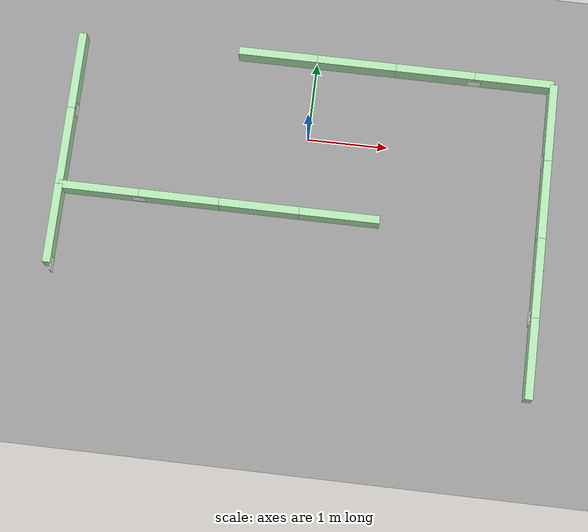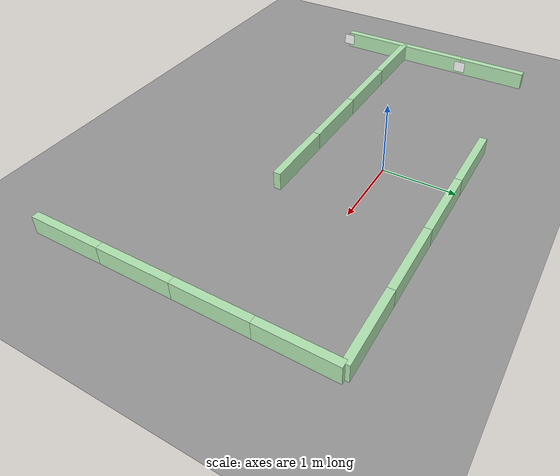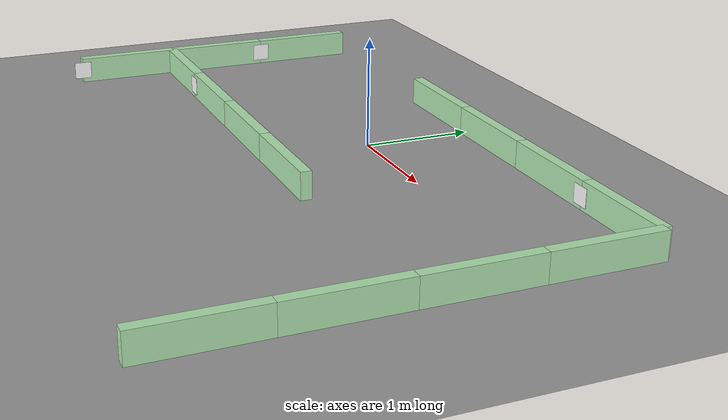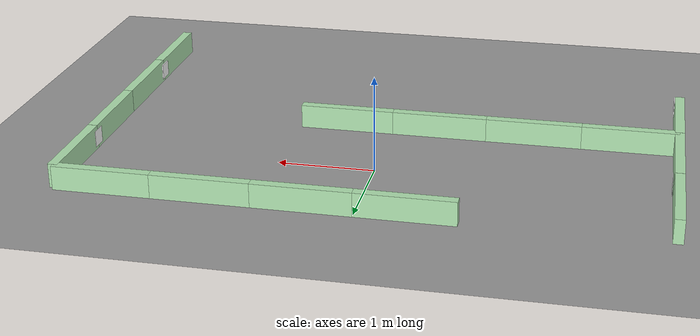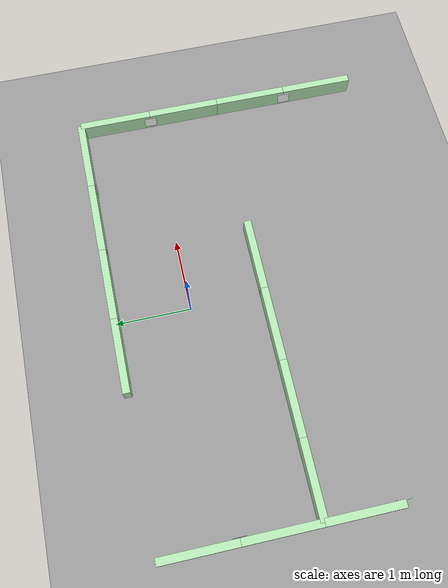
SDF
<sdf version="1.6">
 <world name="default">
  <model name="ground_plane_0">
   <static>1</static>
   <link name="link">
    <collision name="collision">
     <geometry><plane><normal>0 0 1</normal><size>100 100</size></plane></geometry>
     <surface><friction><ode><mu>100</mu><mu2>50</mu2></ode></friction></surface>
    </collision>
    <visual name="visual">
     <cast_shadows>0</cast_shadows>
     <geometry><plane><normal>0 0 1</normal><size>100 100</size></plane></geometry>
     <material>
      <script><uri>file://media/materials/scripts/gazebo.material</uri><name>Gazebo/Grey</name></script>
     </material>
    </visual>
    <velocity_decay><linear>0</linear><angular>0</angular></velocity_decay>
   </link>
   <pose>0.497681 0 0 0 -0 0</pose>
  </model>
  <model name="wall_100_25h_1">
   <link name="link">
    <inertial>
     <mass>1</mass>
     <inertia>
      <ixx>0.166667</ixx>
      <ixy>0</ixy>
      <ixz>0</ixz>
      <iyy>0.166667</iyy>
      <iyz>0</iyz>
      <izz>0.166667</izz>
     </inertia>
    </inertial>
    <visual name="visual">
     <geometry><box><size>1 0.1 0.25</size></box></geometry>
     <material>
      <script><name>Gazebo/Grey</name><uri>file://media/materials/scripts/gazebo.material</uri></script>
      <ambient>0.3 0.5 0.3 1</ambient>
      <diffuse>0.7 0.9 0.7 1</diffuse>
      <specular>0.01 0.02 0.01 1</specular>
      <emissive>0 0 0 1</emissive>
      <lighting>1</lighting>
      <shader type="vertex"><normal_map>__default__</normal_map></shader>
     </material>
    </visual>
    <collision name="collision">
     <geometry><box><size>1 0.1 0.25</size></box></geometry>
     <surface>
      <friction>
       <ode><mu>1</mu><mu2>1</mu2><fdir1>0 0 0</fdir1><slip1>0</slip1><slip2>0</slip2></ode>
       <torsional>
        <coefficient>1</coefficient>
        <patch_radius>0</patch_radius>
        <surface_radius>0</surface_radius>
        <use_patch_radius>1</use_patch_radius>
        <ode><slip>0</slip></ode>
       </torsional>
      </friction>
      <bounce><restitution_coefficient>0</restitution_coefficient><threshold>1e+06</threshold></bounce>
      <contact>
       <collide_without_contact>0</collide_without_contact>
       <collide_without_contact_bitmask>1</collide_without_contact_bitmask>
       <collide_bitmask>1</collide_bitmask>
       <ode>
        <soft_cfm>0</soft_cfm>
        <soft_erp>0.2</soft_erp>
        <kp>1e+13</kp>
        <kd>1</kd>
        <max_vel>0.01</max_vel>
        <min_depth>0</min_depth>
       </ode>
       <bullet>
        <split_impulse>1</split_impulse>
        <split_impulse_penetration_threshold>-0.01</split_impulse_penetration_threshold>
        <soft_cfm>0</soft_cfm>
        <soft_erp>0.2</soft_erp>
        <kp>1e+13</kp>
        <kd>1</kd>
       </bullet>
      </contact>
     </surface>
    </collision>
   </link>
   <static>1</static>
   <pose>-0.5 1 0.125 0.000404 -0 0</pose>
  </model>
  <model name="wall_100_25h_1_clone">
   <link name="link">
    <inertial>
     <mass>1</mass>
     <inertia>
      <ixx>0.166667</ixx>
      <ixy>0</ixy>
      <ixz>0</ixz>
      <iyy>0.166667</iyy>
      <iyz>0</iyz>
      <izz>0.166667</izz>
     </inertia>
    </inertial>
    <visual name="visual">
     <geometry><box><size>1 0.1 0.25</size></box></geometry>
     <material>
      <script><name>Gazebo/Grey</name><uri>file://media/materials/scripts/gazebo.material</uri></script>
      <ambient>0.3 0.5 0.3 1</ambient>
      <diffuse>0.7 0.9 0.7 1</diffuse>
      <specular>0.01 0.02 0.01 1</specular>
      <emissive>0 0 0 1</emissive>
      <lighting>1</lighting>
      <shader type="vertex"><normal_map>__default__</normal_map></shader>
     </material>
    </visual>
    <collision name="collision">
     <geometry><box><size>1 0.1 0.25</size></box></geometry>
     <surface>
      <friction>
       <ode><mu>1</mu><mu2>1</mu2><fdir1>0 0 0</fdir1><slip1>0</slip1><slip2>0</slip2></ode>
       <torsional>
        <coefficient>1</coefficient>
        <patch_radius>0</patch_radius>
        <surface_radius>0</surface_radius>
        <use_patch_radius>1</use_patch_radius>
        <ode><slip>0</slip></ode>
       </torsional>
      </friction>
      <bounce><restitution_coefficient>0</restitution_coefficient><threshold>1e+06</threshold></bounce>
      <contact>
       <collide_without_contact>0</collide_without_contact>
       <collide_without_contact_bitmask>1</collide_without_contact_bitmask>
       <collide_bitmask>1</collide_bitmask>
       <ode>
        <soft_cfm>0</soft_cfm>
        <soft_erp>0.2</soft_erp>
        <kp>1e+13</kp>
        <kd>1</kd>
        <max_vel>0.01</max_vel>
        <min_depth>0</min_depth>
       </ode>
       <bullet>
        <split_impulse>1</split_impulse>
        <split_impulse_penetration_threshold>-0.01</split_impulse_penetration_threshold>
        <soft_cfm>0</soft_cfm>
        <soft_erp>0.2</soft_erp>
        <kp>1e+13</kp>
        <kd>1</kd>
       </bullet>
      </contact>
     </surface>
    </collision>
   </link>
   <static>1</static>
   <pose>0.5 1 0.125 0 -0 0</pose>
  </model>
  <model name="wall_100_25h_1_clone_0">
   <link name="link">
    <inertial>
     <mass>1</mass>
     <inertia>
      <ixx>0.166667</ixx>
      <ixy>0</ixy>
      <ixz>0</ixz>
      <iyy>0.166667</iyy>
      <iyz>0</iyz>
      <izz>0.166667</izz>
     </inertia>
    </inertial>
    <visual name="visual">
     <geometry><box><size>1 0.1 0.25</size></box></geometry>
     <material>
      <script><name>Gazebo/Grey</name><uri>file://media/materials/scripts/gazebo.material</uri></script>
      <ambient>0.3 0.5 0.3 1</ambient>
      <diffuse>0.7 0.9 0.7 1</diffuse>
      <specular>0.01 0.02 0.01 1</specular>
      <emissive>0 0 0 1</emissive>
      <lighting>1</lighting>
      <shader type="vertex"><normal_map>__default__</normal_map></shader>
     </material>
    </visual>
    <collision name="collision">
     <geometry><box><size>1 0.1 0.25</size></box></geometry>
     <surface>
      <friction>
       <ode><mu>1</mu><mu2>1</mu2><fdir1>0 0 0</fdir1><slip1>0</slip1><slip2>0</slip2></ode>
       <torsional>
        <coefficient>1</coefficient>
        <patch_radius>0</patch_radius>
        <surface_radius>0</surface_radius>
        <use_patch_radius>1</use_patch_radius>
        <ode><slip>0</slip></ode>
       </torsional>
      </friction>
      <bounce><restitution_coefficient>0</restitution_coefficient><threshold>1e+06</threshold></bounce>
      <contact>
       <collide_without_contact>0</collide_without_contact>
       <collide_without_contact_bitmask>1</collide_without_contact_bitmask>
       <collide_bitmask>1</collide_bitmask>
       <ode>
        <soft_cfm>0</soft_cfm>
        <soft_erp>0.2</soft_erp>
        <kp>1e+13</kp>
        <kd>1</kd>
        <max_vel>0.01</max_vel>
        <min_depth>0</min_depth>
       </ode>
       <bullet>
        <split_impulse>1</split_impulse>
        <split_impulse_penetration_threshold>-0.01</split_impulse_penetration_threshold>
        <soft_cfm>0</soft_cfm>
        <soft_erp>0.2</soft_erp>
        <kp>1e+13</kp>
        <kd>1</kd>
       </bullet>
      </contact>
     </surface>
    </collision>
   </link>
   <static>1</static>
   <pose>1.5 1 0.125 0.000404 -0 0</pose>
  </model>
  <model name="wall_100_25h_1_clone_1">
   <link name="link">
    <inertial>
     <mass>1</mass>
     <inertia>
      <ixx>0.166667</ixx>
      <ixy>0</ixy>
      <ixz>0</ixz>
      <iyy>0.166667</iyy>
      <iyz>0</iyz>
      <izz>0.166667</izz>
     </inertia>
    </inertial>
    <visual name="visual">
     <geometry><box><size>1 0.1 0.25</size></box></geometry>
     <material>
      <script><name>Gazebo/Grey</name><uri>file://media/materials/scripts/gazebo.material</uri></script>
      <ambient>0.3 0.5 0.3 1</ambient>
      <diffuse>0.7 0.9 0.7 1</diffuse>
      <specular>0.01 0.02 0.01 1</specular>
      <emissive>0 0 0 1</emissive>
      <lighting>1</lighting>
      <shader type="vertex"><normal_map>__default__</normal_map></shader>
     </material>
    </visual>
    <collision name="collision">
     <geometry><box><size>1 0.1 0.25</size></box></geometry>
     <surface>
      <friction>
       <ode><mu>1</mu><mu2>1</mu2><fdir1>0 0 0</fdir1><slip1>0</slip1><slip2>0</slip2></ode>
       <torsional>
        <coefficient>1</coefficient>
        <patch_radius>0</patch_radius>
        <surface_radius>0</surface_radius>
        <use_patch_radius>1</use_patch_radius>
        <ode><slip>0</slip></ode>
       </torsional>
      </friction>
      <bounce><restitution_coefficient>0</restitution_coefficient><threshold>1e+06</threshold></bounce>
      <contact>
       <collide_without_contact>0</collide_without_contact>
       <collide_without_contact_bitmask>1</collide_without_contact_bitmask>
       <collide_bitmask>1</collide_bitmask>
       <ode>
        <soft_cfm>0</soft_cfm>
        <soft_erp>0.2</soft_erp>
        <kp>1e+13</kp>
        <kd>1</kd>
        <max_vel>0.01</max_vel>
        <min_depth>0</min_depth>
       </ode>
       <bullet>
        <split_impulse>1</split_impulse>
        <split_impulse_penetration_threshold>-0.01</split_impulse_penetration_threshold>
        <soft_cfm>0</soft_cfm>
        <soft_erp>0.2</soft_erp>
        <kp>1e+13</kp>
        <kd>1</kd>
       </bullet>
      </contact>
     </surface>
    </collision>
   </link>
   <static>1</static>
   <pose>-0.5 -1 0.125 0.000404 -0 0</pose>
  </model>
  <model name="wall_100_25h_1_clone_2">
   <link name="link">
    <inertial>
     <mass>1</mass>
     <inertia>
      <ixx>0.166667</ixx>
      <ixy>0</ixy>
      <ixz>0</ixz>
      <iyy>0.166667</iyy>
      <iyz>0</iyz>
      <izz>0.166667</izz>
     </inertia>
    </inertial>
    <visual name="visual">
     <geometry><box><size>1 0.1 0.25</size></box></geometry>
     <material>
      <script><name>Gazebo/Grey</name><uri>file://media/materials/scripts/gazebo.material</uri></script>
      <ambient>0.3 0.5 0.3 1</ambient>
      <diffuse>0.7 0.9 0.7 1</diffuse>
      <specular>0.01 0.02 0.01 1</specular>
      <emissive>0 0 0 1</emissive>
      <lighting>1</lighting>
      <shader type="vertex"><normal_map>__default__</normal_map></shader>
     </material>
    </visual>
    <collision name="collision">
     <geometry><box><size>1 0.1 0.25</size></box></geometry>
     <surface>
      <friction>
       <ode><mu>1</mu><mu2>1</mu2><fdir1>0 0 0</fdir1><slip1>0</slip1><slip2>0</slip2></ode>
       <torsional>
        <coefficient>1</coefficient>
        <patch_radius>0</patch_radius>
        <surface_radius>0</surface_radius>
        <use_patch_radius>1</use_patch_radius>
        <ode><slip>0</slip></ode>
       </torsional>
      </friction>
      <bounce><restitution_coefficient>0</restitution_coefficient><threshold>1e+06</threshold></bounce>
      <contact>
       <collide_without_contact>0</collide_without_contact>
       <collide_without_contact_bitmask>1</collide_without_contact_bitmask>
       <collide_bitmask>1</collide_bitmask>
       <ode>
        <soft_cfm>0</soft_cfm>
        <soft_erp>0.2</soft_erp>
        <kp>1e+13</kp>
        <kd>1</kd>
        <max_vel>0.01</max_vel>
        <min_depth>0</min_depth>
       </ode>
       <bullet>
        <split_impulse>1</split_impulse>
        <split_impulse_penetration_threshold>-0.01</split_impulse_penetration_threshold>
        <soft_cfm>0</soft_cfm>
        <soft_erp>0.2</soft_erp>
        <kp>1e+13</kp>
        <kd>1</kd>
       </bullet>
      </contact>
     </surface>
    </collision>
   </link>
   <static>1</static>
   <pose>0.5 -1 0.125 0.000404 -0 0</pose>
  </model>
  <model name="wall_100_25h_1_clone_7">
   <link name="link">
    <inertial>
     <mass>1</mass>
     <inertia>
      <ixx>0.166667</ixx>
      <ixy>0</ixy>
      <ixz>0</ixz>
      <iyy>0.166667</iyy>
      <iyz>0</iyz>
      <izz>0.166667</izz>
     </inertia>
    </inertial>
    <visual name="visual">
     <geometry><box><size>1 0.1 0.25</size></box></geometry>
     <material>
      <script><name>Gazebo/Grey</name><uri>file://media/materials/scripts/gazebo.material</uri></script>
      <ambient>0.3 0.5 0.3 1</ambient>
      <diffuse>0.7 0.9 0.7 1</diffuse>
      <specular>0.01 0.02 0.01 1</specular>
      <emissive>0 0 0 1</emissive>
      <lighting>1</lighting>
      <shader type="vertex"><normal_map>__default__</normal_map></shader>
     </material>
    </visual>
    <collision name="collision">
     <geometry><box><size>1 0.1 0.25</size></box></geometry>
     <surface>
      <friction>
       <ode><mu>1</mu><mu2>1</mu2><fdir1>0 0 0</fdir1><slip1>0</slip1><slip2>0</slip2></ode>
       <torsional>
        <coefficient>1</coefficient>
        <patch_radius>0</patch_radius>
        <surface_radius>0</surface_radius>
        <use_patch_radius>1</use_patch_radius>
        <ode><slip>0</slip></ode>
       </torsional>
      </friction>
      <bounce><restitution_coefficient>0</restitution_coefficient><threshold>1e+06</threshold></bounce>
      <contact>
       <collide_without_contact>0</collide_without_contact>
       <collide_without_contact_bitmask>1</collide_without_contact_bitmask>
       <collide_bitmask>1</collide_bitmask>
       <ode>
        <soft_cfm>0</soft_cfm>
        <soft_erp>0.2</soft_erp>
        <kp>1e+13</kp>
        <kd>1</kd>
        <max_vel>0.01</max_vel>
        <min_depth>0</min_depth>
       </ode>
       <bullet>
        <split_impulse>1</split_impulse>
        <split_impulse_penetration_threshold>-0.01</split_impulse_penetration_threshold>
        <soft_cfm>0</soft_cfm>
        <soft_erp>0.2</soft_erp>
        <kp>1e+13</kp>
        <kd>1</kd>
       </bullet>
      </contact>
     </surface>
    </collision>
   </link>
   <static>1</static>
   <pose>2.5 1 0.125 0.000404 -0 0</pose>
  </model>
  <model name="wall_100_25h_1_clone_8">
   <link name="link">
    <inertial>
     <mass>1</mass>
     <inertia>
      <ixx>0.166667</ixx>
      <ixy>0</ixy>
      <ixz>0</ixz>
      <iyy>0.166667</iyy>
      <iyz>0</iyz>
      <izz>0.166667</izz>
     </inertia>
    </inertial>
    <visual name="visual">
     <geometry><box><size>1 0.1 0.25</size></box></geometry>
     <material>
      <script><name>Gazebo/Grey</name><uri>file://media/materials/scripts/gazebo.material</uri></script>
      <ambient>0.3 0.5 0.3 1</ambient>
      <diffuse>0.7 0.9 0.7 1</diffuse>
      <specular>0.01 0.02 0.01 1</specular>
      <emissive>0 0 0 1</emissive>
      <lighting>1</lighting>
      <shader type="vertex"><normal_map>__default__</normal_map></shader>
     </material>
    </visual>
    <collision name="collision">
     <geometry><box><size>1 0.1 0.25</size></box></geometry>
     <surface>
      <friction>
       <ode><mu>1</mu><mu2>1</mu2><fdir1>0 0 0</fdir1><slip1>0</slip1><slip2>0</slip2></ode>
       <torsional>
        <coefficient>1</coefficient>
        <patch_radius>0</patch_radius>
        <surface_radius>0</surface_radius>
        <use_patch_radius>1</use_patch_radius>
        <ode><slip>0</slip></ode>
       </torsional>
      </friction>
      <bounce><restitution_coefficient>0</restitution_coefficient><threshold>1e+06</threshold></bounce>
      <contact>
       <collide_without_contact>0</collide_without_contact>
       <collide_without_contact_bitmask>1</collide_without_contact_bitmask>
       <collide_bitmask>1</collide_bitmask>
       <ode>
        <soft_cfm>0</soft_cfm>
        <soft_erp>0.2</soft_erp>
        <kp>1e+13</kp>
        <kd>1</kd>
        <max_vel>0.01</max_vel>
        <min_depth>0</min_depth>
       </ode>
       <bullet>
        <split_impulse>1</split_impulse>
        <split_impulse_penetration_threshold>-0.01</split_impulse_penetration_threshold>
        <soft_cfm>0</soft_cfm>
        <soft_erp>0.2</soft_erp>
        <kp>1e+13</kp>
        <kd>1</kd>
       </bullet>
      </contact>
     </surface>
    </collision>
   </link>
   <static>1</static>
   <pose>-1.5 -1 0.125 0.000404 -0 0</pose>
  </model>
  <model name="wall_100_25h_1_clone_9">
   <link name="link">
    <inertial>
     <mass>1</mass>
     <inertia>
      <ixx>0.166667</ixx>
      <ixy>0</ixy>
      <ixz>0</ixz>
      <iyy>0.166667</iyy>
      <iyz>0</iyz>
      <izz>0.166667</izz>
     </inertia>
    </inertial>
    <visual name="visual">
     <geometry><box><size>1 0.1 0.25</size></box></geometry>
     <material>
      <script><name>Gazebo/Grey</name><uri>file://media/materials/scripts/gazebo.material</uri></script>
      <ambient>0.3 0.5 0.3 1</ambient>
      <diffuse>0.7 0.9 0.7 1</diffuse>
      <specular>0.01 0.02 0.01 1</specular>
      <emissive>0 0 0 1</emissive>
      <lighting>1</lighting>
      <shader type="vertex"><normal_map>__default__</normal_map></shader>
     </material>
    </visual>
    <collision name="collision">
     <geometry><box><size>1 0.1 0.25</size></box></geometry>
     <surface>
      <friction>
       <ode><mu>1</mu><mu2>1</mu2><fdir1>0 0 0</fdir1><slip1>0</slip1><slip2>0</slip2></ode>
       <torsional>
        <coefficient>1</coefficient>
        <patch_radius>0</patch_radius>
        <surface_radius>0</surface_radius>
        <use_patch_radius>1</use_patch_radius>
        <ode><slip>0</slip></ode>
       </torsional>
      </friction>
      <bounce><restitution_coefficient>0</restitution_coefficient><threshold>1e+06</threshold></bounce>
      <contact>
       <collide_without_contact>0</collide_without_contact>
       <collide_without_contact_bitmask>1</collide_without_contact_bitmask>
       <collide_bitmask>1</collide_bitmask>
       <ode>
        <soft_cfm>0</soft_cfm>
        <soft_erp>0.2</soft_erp>
        <kp>1e+13</kp>
        <kd>1</kd>
        <max_vel>0.01</max_vel>
        <min_depth>0</min_depth>
       </ode>
       <bullet>
        <split_impulse>1</split_impulse>
        <split_impulse_penetration_threshold>-0.01</split_impulse_penetration_threshold>
        <soft_cfm>0</soft_cfm>
        <soft_erp>0.2</soft_erp>
        <kp>1e+13</kp>
        <kd>1</kd>
       </bullet>
      </contact>
     </surface>
    </collision>
   </link>
   <static>1</static>
   <pose>-2.5 -1 0.125 0.000404 -0 0</pose>
  </model>
  <model name="wall_100_25h_1_clone_9_clone">
   <link name="link">
    <inertial>
     <mass>1</mass>
     <inertia>
      <ixx>0.166667</ixx>
      <ixy>0</ixy>
      <ixz>0</ixz>
      <iyy>0.166667</iyy>
      <iyz>0</iyz>
      <izz>0.166667</izz>
     </inertia>
    </inertial>
    <visual name="visual">
     <geometry><box><size>1 0.1 0.25</size></box></geometry>
     <material>
      <script><name>Gazebo/Grey</name><uri>file://media/materials/scripts/gazebo.material</uri></script>
      <ambient>0.3 0.5 0.3 1</ambient>
      <diffuse>0.7 0.9 0.7 1</diffuse>
      <specular>0.01 0.02 0.01 1</specular>
      <emissive>0 0 0 1</emissive>
      <lighting>1</lighting>
      <shader type="vertex"><normal_map>__default__</normal_map></shader>
     </material>
    </visual>
    <collision name="collision">
     <geometry><box><size>1 0.1 0.25</size></box></geometry>
     <surface>
      <friction>
       <ode><mu>1</mu><mu2>1</mu2><fdir1>0 0 0</fdir1><slip1>0</slip1><slip2>0</slip2></ode>
       <torsional>
        <coefficient>1</coefficient>
        <patch_radius>0</patch_radius>
        <surface_radius>0</surface_radius>
        <use_patch_radius>1</use_patch_radius>
        <ode><slip>0</slip></ode>
       </torsional>
      </friction>
      <bounce><restitution_coefficient>0</restitution_coefficient><threshold>1e+06</threshold></bounce>
      <contact>
       <collide_without_contact>0</collide_without_contact>
       <collide_without_contact_bitmask>1</collide_without_contact_bitmask>
       <collide_bitmask>1</collide_bitmask>
       <ode>
        <soft_cfm>0</soft_cfm>
        <soft_erp>0.2</soft_erp>
        <kp>1e+13</kp>
        <kd>1</kd>
        <max_vel>0.01</max_vel>
        <min_depth>0</min_depth>
       </ode>
       <bullet>
        <split_impulse>1</split_impulse>
        <split_impulse_penetration_threshold>-0.01</split_impulse_penetration_threshold>
        <soft_cfm>0</soft_cfm>
        <soft_erp>0.2</soft_erp>
        <kp>1e+13</kp>
        <kd>1</kd>
       </bullet>
      </contact>
     </surface>
    </collision>
   </link>
   <static>1</static>
   <pose>-3 -1.5 0.125 0 0.000404 -1.57111</pose>
  </model>
  <model name="wall_100_25h_1_clone_9_clone_clone_4">
   <link name="link">
    <inertial>
     <mass>1</mass>
     <inertia>
      <ixx>0.166667</ixx>
      <ixy>0</ixy>
      <ixz>0</ixz>
      <iyy>0.166667</iyy>
      <iyz>0</iyz>
      <izz>0.166667</izz>
     </inertia>
    </inertial>
    <visual name="visual">
     <geometry><box><size>1 0.1 0.25</size></box></geometry>
     <material>
      <script><name>Gazebo/Grey</name><uri>file://media/materials/scripts/gazebo.material</uri></script>
      <ambient>0.3 0.5 0.3 1</ambient>
      <diffuse>0.7 0.9 0.7 1</diffuse>
      <specular>0.01 0.02 0.01 1</specular>
      <emissive>0 0 0 1</emissive>
      <lighting>1</lighting>
      <shader type="vertex"><normal_map>__default__</normal_map></shader>
     </material>
    </visual>
    <collision name="collision">
     <geometry><box><size>1 0.1 0.25</size></box></geometry>
     <surface>
      <friction>
       <ode><mu>1</mu><mu2>1</mu2><fdir1>0 0 0</fdir1><slip1>0</slip1><slip2>0</slip2></ode>
       <torsional>
        <coefficient>1</coefficient>
        <patch_radius>0</patch_radius>
        <surface_radius>0</surface_radius>
        <use_patch_radius>1</use_patch_radius>
        <ode><slip>0</slip></ode>
       </torsional>
      </friction>
      <bounce><restitution_coefficient>0</restitution_coefficient><threshold>1e+06</threshold></bounce>
      <contact>
       <collide_without_contact>0</collide_without_contact>
       <collide_without_contact_bitmask>1</collide_without_contact_bitmask>
       <collide_bitmask>1</collide_bitmask>
       <ode>
        <soft_cfm>0</soft_cfm>
        <soft_erp>0.2</soft_erp>
        <kp>1e+13</kp>
        <kd>1</kd>
        <max_vel>0.01</max_vel>
        <min_depth>0</min_depth>
       </ode>
       <bullet>
        <split_impulse>1</split_impulse>
        <split_impulse_penetration_threshold>-0.01</split_impulse_penetration_threshold>
        <soft_cfm>0</soft_cfm>
        <soft_erp>0.2</soft_erp>
        <kp>1e+13</kp>
        <kd>1</kd>
       </bullet>
      </contact>
     </surface>
    </collision>
   </link>
   <static>1</static>
   <pose>3 -2.5 0.125 0 0.000404 -1.57111</pose>
  </model>
  <model name="wall_100_25h_1_clone_9_clone_clone_5">
   <link name="link">
    <inertial>
     <mass>1</mass>
     <inertia>
      <ixx>0.166667</ixx>
      <ixy>0</ixy>
      <ixz>0</ixz>
      <iyy>0.166667</iyy>
      <iyz>0</iyz>
      <izz>0.166667</izz>
     </inertia>
    </inertial>
    <visual name="visual">
     <geometry><box><size>1 0.1 0.25</size></box></geometry>
     <material>
      <script><name>Gazebo/Grey</name><uri>file://media/materials/scripts/gazebo.material</uri></script>
      <ambient>0.3 0.5 0.3 1</ambient>
      <diffuse>0.7 0.9 0.7 1</diffuse>
      <specular>0.01 0.02 0.01 1</specular>
      <emissive>0 0 0 1</emissive>
      <lighting>1</lighting>
      <shader type="vertex"><normal_map>__default__</normal_map></shader>
     </material>
    </visual>
    <collision name="collision">
     <geometry><box><size>1 0.1 0.25</size></box></geometry>
     <surface>
      <friction>
       <ode><mu>1</mu><mu2>1</mu2><fdir1>0 0 0</fdir1><slip1>0</slip1><slip2>0</slip2></ode>
       <torsional>
        <coefficient>1</coefficient>
        <patch_radius>0</patch_radius>
        <surface_radius>0</surface_radius>
        <use_patch_radius>1</use_patch_radius>
        <ode><slip>0</slip></ode>
       </torsional>
      </friction>
      <bounce><restitution_coefficient>0</restitution_coefficient><threshold>1e+06</threshold></bounce>
      <contact>
       <collide_without_contact>0</collide_without_contact>
       <collide_without_contact_bitmask>1</collide_without_contact_bitmask>
       <collide_bitmask>1</collide_bitmask>
       <ode>
        <soft_cfm>0</soft_cfm>
        <soft_erp>0.2</soft_erp>
        <kp>1e+13</kp>
        <kd>1</kd>
        <max_vel>0.01</max_vel>
        <min_depth>0</min_depth>
       </ode>
       <bullet>
        <split_impulse>1</split_impulse>
        <split_impulse_penetration_threshold>-0.01</split_impulse_penetration_threshold>
        <soft_cfm>0</soft_cfm>
        <soft_erp>0.2</soft_erp>
        <kp>1e+13</kp>
        <kd>1</kd>
       </bullet>
      </contact>
     </surface>
    </collision>
   </link>
   <static>1</static>
   <pose>3 -1.5 0.125 0 0.000404 -1.57111</pose>
  </model>
  <model name="wall_100_25h_1_clone_9_clone_clone_6">
   <link name="link">
    <inertial>
     <mass>1</mass>
     <inertia>
      <ixx>0.166667</ixx>
      <ixy>0</ixy>
      <ixz>0</ixz>
      <iyy>0.166667</iyy>
      <iyz>0</iyz>
      <izz>0.166667</izz>
     </inertia>
    </inertial>
    <visual name="visual">
     <geometry><box><size>1 0.1 0.25</size></box></geometry>
     <material>
      <script><name>Gazebo/Grey</name><uri>file://media/materials/scripts/gazebo.material</uri></script>
      <ambient>0.3 0.5 0.3 1</ambient>
      <diffuse>0.7 0.9 0.7 1</diffuse>
      <specular>0.01 0.02 0.01 1</specular>
      <emissive>0 0 0 1</emissive>
      <lighting>1</lighting>
      <shader type="vertex"><normal_map>__default__</normal_map></shader>
     </material>
    </visual>
    <collision name="collision">
     <geometry><box><size>1 0.1 0.25</size></box></geometry>
     <surface>
      <friction>
       <ode><mu>1</mu><mu2>1</mu2><fdir1>0 0 0</fdir1><slip1>0</slip1><slip2>0</slip2></ode>
       <torsional>
        <coefficient>1</coefficient>
        <patch_radius>0</patch_radius>
        <surface_radius>0</surface_radius>
        <use_patch_radius>1</use_patch_radius>
        <ode><slip>0</slip></ode>
       </torsional>
      </friction>
      <bounce><restitution_coefficient>0</restitution_coefficient><threshold>1e+06</threshold></bounce>
      <contact>
       <collide_without_contact>0</collide_without_contact>
       <collide_without_contact_bitmask>1</collide_without_contact_bitmask>
       <collide_bitmask>1</collide_bitmask>
       <ode>
        <soft_cfm>0</soft_cfm>
        <soft_erp>0.2</soft_erp>
        <kp>1e+13</kp>
        <kd>1</kd>
        <max_vel>0.01</max_vel>
        <min_depth>0</min_depth>
       </ode>
       <bullet>
        <split_impulse>1</split_impulse>
        <split_impulse_penetration_threshold>-0.01</split_impulse_penetration_threshold>
        <soft_cfm>0</soft_cfm>
        <soft_erp>0.2</soft_erp>
        <kp>1e+13</kp>
        <kd>1</kd>
       </bullet>
      </contact>
     </surface>
    </collision>
   </link>
   <static>1</static>
   <pose>3 -0.5 0.125 0 0.000404 -1.57111</pose>
  </model>
  <model name="wall_100_25h_1_clone_9_clone_clone_7">
   <link name="link">
    <inertial>
     <mass>1</mass>
     <inertia>
      <ixx>0.166667</ixx>
      <ixy>0</ixy>
      <ixz>0</ixz>
      <iyy>0.166667</iyy>
      <iyz>0</iyz>
      <izz>0.166667</izz>
     </inertia>
    </inertial>
    <visual name="visual">
     <geometry><box><size>1 0.1 0.25</size></box></geometry>
     <material>
      <script><name>Gazebo/Grey</name><uri>file://media/materials/scripts/gazebo.material</uri></script>
      <ambient>0.3 0.5 0.3 1</ambient>
      <diffuse>0.7 0.9 0.7 1</diffuse>
      <specular>0.01 0.02 0.01 1</specular>
      <emissive>0 0 0 1</emissive>
      <lighting>1</lighting>
      <shader type="vertex"><normal_map>__default__</normal_map></shader>
     </material>
    </visual>
    <collision name="collision">
     <geometry><box><size>1 0.1 0.25</size></box></geometry>
     <surface>
      <friction>
       <ode><mu>1</mu><mu2>1</mu2><fdir1>0 0 0</fdir1><slip1>0</slip1><slip2>0</slip2></ode>
       <torsional>
        <coefficient>1</coefficient>
        <patch_radius>0</patch_radius>
        <surface_radius>0</surface_radius>
        <use_patch_radius>1</use_patch_radius>
        <ode><slip>0</slip></ode>
       </torsional>
      </friction>
      <bounce><restitution_coefficient>0</restitution_coefficient><threshold>1e+06</threshold></bounce>
      <contact>
       <collide_without_contact>0</collide_without_contact>
       <collide_without_contact_bitmask>1</collide_without_contact_bitmask>
       <collide_bitmask>1</collide_bitmask>
       <ode>
        <soft_cfm>0</soft_cfm>
        <soft_erp>0.2</soft_erp>
        <kp>1e+13</kp>
        <kd>1</kd>
        <max_vel>0.01</max_vel>
        <min_depth>0</min_depth>
       </ode>
       <bullet>
        <split_impulse>1</split_impulse>
        <split_impulse_penetration_threshold>-0.01</split_impulse_penetration_threshold>
        <soft_cfm>0</soft_cfm>
        <soft_erp>0.2</soft_erp>
        <kp>1e+13</kp>
        <kd>1</kd>
       </bullet>
      </contact>
     </surface>
    </collision>
   </link>
   <static>1</static>
   <pose>3 0.5 0.125 0 0.000404 -1.57111</pose>
  </model>
  <model name="wall_100_25h_1_clone_9_clone_clone_10">
   <link name="link">
    <inertial>
     <mass>1</mass>
     <inertia>
      <ixx>0.166667</ixx>
      <ixy>0</ixy>
      <ixz>0</ixz>
      <iyy>0.166667</iyy>
      <iyz>0</iyz>
      <izz>0.166667</izz>
     </inertia>
    </inertial>
    <visual name="visual">
     <geometry><box><size>1 0.1 0.25</size></box></geometry>
     <material>
      <script><name>Gazebo/Grey</name><uri>file://media/materials/scripts/gazebo.material</uri></script>
      <ambient>0.3 0.5 0.3 1</ambient>
      <diffuse>0.7 0.9 0.7 1</diffuse>
      <specular>0.01 0.02 0.01 1</specular>
      <emissive>0 0 0 1</emissive>
      <lighting>1</lighting>
      <shader type="vertex"><normal_map>__default__</normal_map></shader>
     </material>
    </visual>
    <collision name="collision">
     <geometry><box><size>1 0.1 0.25</size></box></geometry>
     <surface>
      <friction>
       <ode><mu>1</mu><mu2>1</mu2><fdir1>0 0 0</fdir1><slip1>0</slip1><slip2>0</slip2></ode>
       <torsional>
        <coefficient>1</coefficient>
        <patch_radius>0</patch_radius>
        <surface_radius>0</surface_radius>
        <use_patch_radius>1</use_patch_radius>
        <ode><slip>0</slip></ode>
       </torsional>
      </friction>
      <bounce><restitution_coefficient>0</restitution_coefficient><threshold>1e+06</threshold></bounce>
      <contact>
       <collide_without_contact>0</collide_without_contact>
       <collide_without_contact_bitmask>1</collide_without_contact_bitmask>
       <collide_bitmask>1</collide_bitmask>
       <ode>
        <soft_cfm>0</soft_cfm>
        <soft_erp>0.2</soft_erp>
        <kp>1e+13</kp>
        <kd>1</kd>
        <max_vel>0.01</max_vel>
        <min_depth>0</min_depth>
       </ode>
       <bullet>
        <split_impulse>1</split_impulse>
        <split_impulse_penetration_threshold>-0.01</split_impulse_penetration_threshold>
        <soft_cfm>0</soft_cfm>
        <soft_erp>0.2</soft_erp>
        <kp>1e+13</kp>
        <kd>1</kd>
       </bullet>
      </contact>
     </surface>
    </collision>
   </link>
   <static>1</static>
   <pose>-3 -0.5 0.125 0 0.000404 -1.57111</pose>
  </model>
  <model name="wall_100_25h_1_clone_9_clone_clone_11">
   <link name="link">
    <inertial>
     <mass>1</mass>
     <inertia>
      <ixx>0.166667</ixx>
      <ixy>0</ixy>
      <ixz>0</ixz>
      <iyy>0.166667</iyy>
      <iyz>0</iyz>
      <izz>0.166667</izz>
     </inertia>
    </inertial>
    <visual name="visual">
     <geometry><box><size>1 0.1 0.25</size></box></geometry>
     <material>
      <script><name>Gazebo/Grey</name><uri>file://media/materials/scripts/gazebo.material</uri></script>
      <ambient>0.3 0.5 0.3 1</ambient>
      <diffuse>0.7 0.9 0.7 1</diffuse>
      <specular>0.01 0.02 0.01 1</specular>
      <emissive>0 0 0 1</emissive>
      <lighting>1</lighting>
      <shader type="vertex"><normal_map>__default__</normal_map></shader>
     </material>
    </visual>
    <collision name="collision">
     <geometry><box><size>1 0.1 0.25</size></box></geometry>
     <surface>
      <friction>
       <ode><mu>1</mu><mu2>1</mu2><fdir1>0 0 0</fdir1><slip1>0</slip1><slip2>0</slip2></ode>
       <torsional>
        <coefficient>1</coefficient>
        <patch_radius>0</patch_radius>
        <surface_radius>0</surface_radius>
        <use_patch_radius>1</use_patch_radius>
        <ode><slip>0</slip></ode>
       </torsional>
      </friction>
      <bounce><restitution_coefficient>0</restitution_coefficient><threshold>1e+06</threshold></bounce>
      <contact>
       <collide_without_contact>0</collide_without_contact>
       <collide_without_contact_bitmask>1</collide_without_contact_bitmask>
       <collide_bitmask>1</collide_bitmask>
       <ode>
        <soft_cfm>0</soft_cfm>
        <soft_erp>0.2</soft_erp>
        <kp>1e+13</kp>
        <kd>1</kd>
        <max_vel>0.01</max_vel>
        <min_depth>0</min_depth>
       </ode>
       <bullet>
        <split_impulse>1</split_impulse>
        <split_impulse_penetration_threshold>-0.01</split_impulse_penetration_threshold>
        <soft_cfm>0</soft_cfm>
        <soft_erp>0.2</soft_erp>
        <kp>1e+13</kp>
        <kd>1</kd>
       </bullet>
      </contact>
     </surface>
    </collision>
   </link>
   <static>1</static>
   <pose>-3 0.5 0.125 0 0.000404 -1.57111</pose>
  </model>
  <model name="Apriltag36_11_00001">
   <link name="main">
    <inertial>
     <mass>1</mass>
     <inertia><ixx>1</ixx><ixy>0</ixy><ixz>0</ixz><iyy>1</iyy><iyz>0</iyz><izz>1</izz></inertia>
    </inertial>
    <visual name="main_Visual">
     <geometry><box><size>0.170546 0.170546 0.002005</size></box></geometry>
     <material>
      <script>
       <uri>model://Apriltag36_11_00001/materials/scripts</uri>
       <uri>model://Apriltag36_11_00001/materials/textures</uri>
       <name>Apriltag36_11_00001</name>
      </script>
      <shader type="pixel"><normal_map>__default__</normal_map></shader>
      <ambient>1 1 1 1</ambient>
      <diffuse>1 1 1 1</diffuse>
      <specular>0 0 0 1</specular>
      <emissive>0 0 0 1</emissive>
     </material>
    </visual>
   </link>
   <static>1</static>
   <pose>-2.93836 0 0.125987 0 1.57 0</pose>
  </model>
  <model name="Apriltag36_11_00001_clone">
   <link name="main">
    <inertial>
     <mass>1</mass>
     <inertia><ixx>1</ixx><ixy>0</ixy><ixz>0</ixz><iyy>1</iyy><iyz>0</iyz><izz>1</izz></inertia>
    </inertial>
    <visual name="main_Visual">
     <geometry><box><size>0.170546 0.170546 0.002005</size></box></geometry>
     <material>
      <script>
       <uri>model://Apriltag36_11_00001/materials/scripts</uri>
       <uri>model://Apriltag36_11_00001/materials/textures</uri>
       <name>Apriltag36_11_00001</name>
      </script>
      <shader type="pixel"><normal_map>__default__</normal_map></shader>
      <ambient>1 1 1 1</ambient>
      <diffuse>1 1 1 1</diffuse>
      <specular>0 0 0 1</specular>
      <emissive>0 0 0 1</emissive>
     </material>
    </visual>
   </link>
   <static>1</static>
   <pose>2.94205 0 0.125987 0 1.57 0</pose>
  </model>
  <model name="Apriltag36_11_00000">
   <link name="main">
    <inertial>
     <mass>1</mass>
     <inertia><ixx>1</ixx><ixy>0</ixy><ixz>0</ixz><iyy>1</iyy><iyz>0</iyz><izz>1</izz></inertia>
    </inertial>
    <visual name="main_Visual">
     <geometry><box><size>0.17 0.17 0.01</size></box></geometry>
     <material>
      <script>
       <uri>model://Apriltag36_11_00000/materials/scripts</uri>
       <uri>model://Apriltag36_11_00000/materials/textures</uri>
       <name>Apriltag36_11_00000</name>
      </script>
      <shader type="pixel"><normal_map>__default__</normal_map></shader>
      <ambient>1 1 1 1</ambient>
      <diffuse>1 1 1 1</diffuse>
      <specular>0 0 0 1</specular>
      <emissive>0 0 0 1</emissive>
     </material>
    </visual>
   </link>
   <static>1</static>
   <pose>-2.94714 -2 0.13002 -3.14159 1.57 -3.14159</pose>
  </model>
  <model name="Apriltag36_11_00001_clone_0_clone">
   <link name="main">
    <inertial>
     <mass>1</mass>
     <inertia><ixx>1</ixx><ixy>0</ixy><ixz>0</ixz><iyy>1</iyy><iyz>0</iyz><izz>1</izz></inertia>
    </inertial>
    <visual name="main_Visual">
     <geometry><box><size>0.170546 0.170546 0.002005</size></box></geometry>
     <material>
      <script>
       <uri>model://Apriltag36_11_00001/materials/scripts</uri>
       <uri>model://Apriltag36_11_00001/materials/textures</uri>
       <name>Apriltag36_11_00001</name>
      </script>
      <shader type="pixel"><normal_map>__default__</normal_map></shader>
      <ambient>1 1 1 1</ambient>
      <diffuse>1 1 1 1</diffuse>
      <specular>0 0 0 1</specular>
      <emissive>0 0 0 1</emissive>
     </material>
    </visual>
   </link>
   <static>1</static>
   <pose>-2 -1.05356 0.125949 1.5704 1.57 0.000396</pose>
  </model>
  <model name="Apriltag36_11_00000_clone_0">
   <link name="main">
    <inertial>
     <mass>1</mass>
     <inertia><ixx>1</ixx><ixy>0</ixy><ixz>0</ixz><iyy>1</iyy><iyz>0</iyz><izz>1</izz></inertia>
    </inertial>
    <visual name="main_Visual">
     <geometry><box><size>0.17 0.17 0.01</size></box></geometry>
     <material>
      <script>
       <uri>model://Apriltag36_11_00000/materials/scripts</uri>
       <uri>model://Apriltag36_11_00000/materials/textures</uri>
       <name>Apriltag36_11_00000</name>
      </script>
      <shader type="pixel"><normal_map>__default__</normal_map></shader>
      <ambient>1 1 1 1</ambient>
      <diffuse>1 1 1 1</diffuse>
      <specular>0 0 0 1</specular>
      <emissive>0 0 0 1</emissive>
     </material>
    </visual>
   </link>
   <static>1</static>
   <pose>2.93608 -2 0.13002 3.14159 1.57 3.14159</pose>
  </model>
  <model name="Apriltag36_11_00000_0">
   <link name="main">
    <inertial>
     <mass>1</mass>
     <inertia><ixx>1</ixx><ixy>0</ixy><ixz>0</ixz><iyy>1</iyy><iyz>0</iyz><izz>1</izz></inertia>
    </inertial>
    <visual name="main_Visual">
     <geometry><box><size>0.17 0.17 0.002829</size></box></geometry>
     <material>
      <script>
       <uri>model://Apriltag36_11_00000/materials/scripts</uri>
       <uri>model://Apriltag36_11_00000/materials/textures</uri>
       <name>Apriltag36_11_00000</name>
      </script>
      <shader type="pixel"><normal_map>__default__</normal_map></shader>
      <ambient>1 1 1 1</ambient>
      <diffuse>1 1 1 1</diffuse>
      <specular>0 0 0 1</specular>
      <emissive>0 0 0 1</emissive>
     </material>
    </visual>
   </link>
   <static>1</static>
   <pose>2 0.938569 0.124517 -1.57079 -1.57059 -3.14159</pose>
  </model>
 </world>
</sdf>
